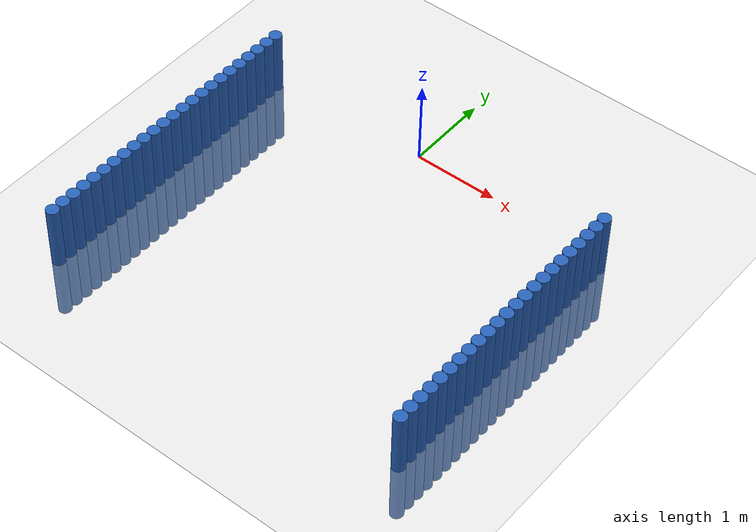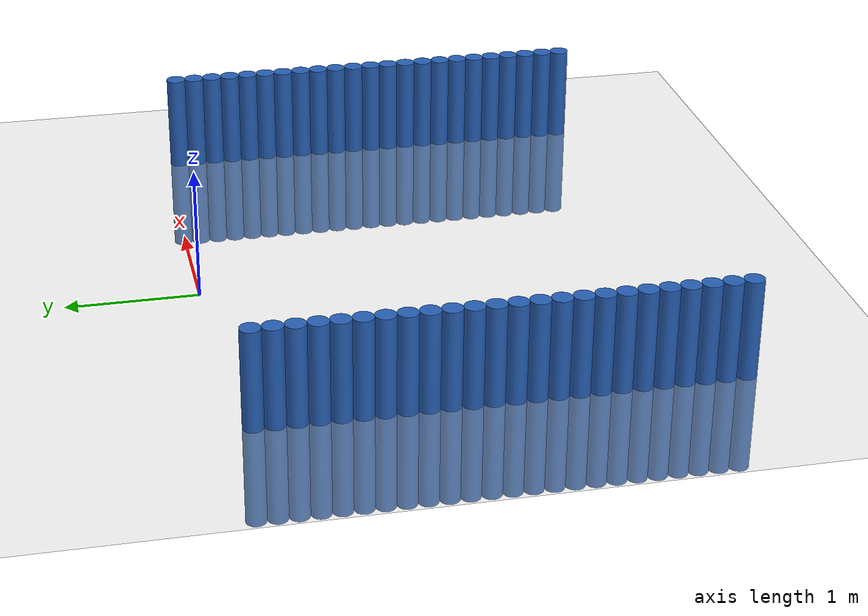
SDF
<sdf version="1.6">
 <world name="default">
  <model name="ground_plane">
   <static>1</static>
   <link name="link">
    <collision name="collision">
     <geometry><plane><normal>0 0 1</normal><size>100 100</size></plane></geometry>
     <surface><friction><ode><mu>100</mu><mu2>50</mu2></ode></friction></surface>
    </collision>
    <visual name="visual">
     <cast_shadows>0</cast_shadows>
     <geometry><plane><normal>0 0 1</normal><size>100 100</size></plane></geometry>
     <material>
      <script><uri>file://media/materials/scripts/gazebo.material</uri><name>Gazebo/Grey</name></script>
     </material>
    </visual>
   </link>
  </model>
  <model name="unit_cylinder_47">
   <static>1</static>
   <pose>-1.925000 -3.575000 0.000000 0.000000 0.000000 0.000000</pose>
   <link name="link">
    <inertial>
     <mass>1</mass>
     <inertia><ixx>0.145833</ixx><ixy>0</ixy><ixz>0</ixz><iyy>0.145833</iyy><iyz>0</iyz><izz>0.125</izz></inertia>
    </inertial>
    <collision name="collision">
     <geometry><cylinder><radius>0.075000</radius><length>1.5</length></cylinder></geometry>
    </collision>
    <visual name="visual">
     <geometry><cylinder><radius>0.075000</radius><length>1.5</length></cylinder></geometry>
     <material>
      <ambient>0.152000 0.379000 0.720000 1</ambient>
      <diffuse>0.152000 0.379000 0.720000 1</diffuse>
     </material>
     <material>
      <script><name>Gazebo/Grey</name><uri>file://media/materials/scripts/gazebo.material</uri></script>
     </material>
    </visual>
   </link>
  </model>
  <model name="unit_cylinder_48">
   <static>1</static>
   <pose>2.425000 -3.425000 0.000000 0.000000 0.000000 0.000000</pose>
   <link name="link">
    <inertial>
     <mass>1</mass>
     <inertia><ixx>0.145833</ixx><ixy>0</ixy><ixz>0</ixz><iyy>0.145833</iyy><iyz>0</iyz><izz>0.125</izz></inertia>
    </inertial>
    <collision name="collision">
     <geometry><cylinder><radius>0.075000</radius><length>1.5</length></cylinder></geometry>
    </collision>
    <visual name="visual">
     <geometry><cylinder><radius>0.075000</radius><length>1.5</length></cylinder></geometry>
     <material>
      <ambient>0.152000 0.379000 0.720000 1</ambient>
      <diffuse>0.152000 0.379000 0.720000 1</diffuse>
     </material>
     <material>
      <script><name>Gazebo/Grey</name><uri>file://media/materials/scripts/gazebo.material</uri></script>
     </material>
    </visual>
   </link>
  </model>
  <model name="unit_cylinder_49">
   <static>1</static>
   <pose>-1.925000 -3.425000 0.000000 0.000000 0.000000 0.000000</pose>
   <link name="link">
    <inertial>
     <mass>1</mass>
     <inertia><ixx>0.145833</ixx><ixy>0</ixy><ixz>0</ixz><iyy>0.145833</iyy><iyz>0</iyz><izz>0.125</izz></inertia>
    </inertial>
    <collision name="collision">
     <geometry><cylinder><radius>0.075000</radius><length>1.5</length></cylinder></geometry>
    </collision>
    <visual name="visual">
     <geometry><cylinder><radius>0.075000</radius><length>1.5</length></cylinder></geometry>
     <material>
      <ambient>0.152000 0.379000 0.720000 1</ambient>
      <diffuse>0.152000 0.379000 0.720000 1</diffuse>
     </material>
     <material>
      <script><name>Gazebo/Grey</name><uri>file://media/materials/scripts/gazebo.material</uri></script>
     </material>
    </visual>
   </link>
  </model>
  <model name="unit_cylinder_50">
   <static>1</static>
   <pose>2.425000 -3.275000 0.000000 0.000000 0.000000 0.000000</pose>
   <link name="link">
    <inertial>
     <mass>1</mass>
     <inertia><ixx>0.145833</ixx><ixy>0</ixy><ixz>0</ixz><iyy>0.145833</iyy><iyz>0</iyz><izz>0.125</izz></inertia>
    </inertial>
    <collision name="collision">
     <geometry><cylinder><radius>0.075000</radius><length>1.5</length></cylinder></geometry>
    </collision>
    <visual name="visual">
     <geometry><cylinder><radius>0.075000</radius><length>1.5</length></cylinder></geometry>
     <material>
      <ambient>0.152000 0.379000 0.720000 1</ambient>
      <diffuse>0.152000 0.379000 0.720000 1</diffuse>
     </material>
     <material>
      <script><name>Gazebo/Grey</name><uri>file://media/materials/scripts/gazebo.material</uri></script>
     </material>
    </visual>
   </link>
  </model>
  <model name="unit_cylinder_51">
   <static>1</static>
   <pose>-1.925000 -3.275000 0.000000 0.000000 0.000000 0.000000</pose>
   <link name="link">
    <inertial>
     <mass>1</mass>
     <inertia><ixx>0.145833</ixx><ixy>0</ixy><ixz>0</ixz><iyy>0.145833</iyy><iyz>0</iyz><izz>0.125</izz></inertia>
    </inertial>
    <collision name="collision">
     <geometry><cylinder><radius>0.075000</radius><length>1.5</length></cylinder></geometry>
    </collision>
    <visual name="visual">
     <geometry><cylinder><radius>0.075000</radius><length>1.5</length></cylinder></geometry>
     <material>
      <ambient>0.152000 0.379000 0.720000 1</ambient>
      <diffuse>0.152000 0.379000 0.720000 1</diffuse>
     </material>
     <material>
      <script><name>Gazebo/Grey</name><uri>file://media/materials/scripts/gazebo.material</uri></script>
     </material>
    </visual>
   </link>
  </model>
  <model name="unit_cylinder_52">
   <static>1</static>
   <pose>2.425000 -3.125000 0.000000 0.000000 0.000000 0.000000</pose>
   <link name="link">
    <inertial>
     <mass>1</mass>
     <inertia><ixx>0.145833</ixx><ixy>0</ixy><ixz>0</ixz><iyy>0.145833</iyy><iyz>0</iyz><izz>0.125</izz></inertia>
    </inertial>
    <collision name="collision">
     <geometry><cylinder><radius>0.075000</radius><length>1.5</length></cylinder></geometry>
    </collision>
    <visual name="visual">
     <geometry><cylinder><radius>0.075000</radius><length>1.5</length></cylinder></geometry>
     <material>
      <ambient>0.152000 0.379000 0.720000 1</ambient>
      <diffuse>0.152000 0.379000 0.720000 1</diffuse>
     </material>
     <material>
      <script><name>Gazebo/Grey</name><uri>file://media/materials/scripts/gazebo.material</uri></script>
     </material>
    </visual>
   </link>
  </model>
  <model name="unit_cylinder_53">
   <static>1</static>
   <pose>-1.925000 -3.125000 0.000000 0.000000 0.000000 0.000000</pose>
   <link name="link">
    <inertial>
     <mass>1</mass>
     <inertia><ixx>0.145833</ixx><ixy>0</ixy><ixz>0</ixz><iyy>0.145833</iyy><iyz>0</iyz><izz>0.125</izz></inertia>
    </inertial>
    <collision name="collision">
     <geometry><cylinder><radius>0.075000</radius><length>1.5</length></cylinder></geometry>
    </collision>
    <visual name="visual">
     <geometry><cylinder><radius>0.075000</radius><length>1.5</length></cylinder></geometry>
     <material>
      <ambient>0.152000 0.379000 0.720000 1</ambient>
      <diffuse>0.152000 0.379000 0.720000 1</diffuse>
     </material>
     <material>
      <script><name>Gazebo/Grey</name><uri>file://media/materials/scripts/gazebo.material</uri></script>
     </material>
    </visual>
   </link>
  </model>
  <model name="unit_cylinder_54">
   <static>1</static>
   <pose>2.425000 -2.975000 0.000000 0.000000 0.000000 0.000000</pose>
   <link name="link">
    <inertial>
     <mass>1</mass>
     <inertia><ixx>0.145833</ixx><ixy>0</ixy><ixz>0</ixz><iyy>0.145833</iyy><iyz>0</iyz><izz>0.125</izz></inertia>
    </inertial>
    <collision name="collision">
     <geometry><cylinder><radius>0.075000</radius><length>1.5</length></cylinder></geometry>
    </collision>
    <visual name="visual">
     <geometry><cylinder><radius>0.075000</radius><length>1.5</length></cylinder></geometry>
     <material>
      <ambient>0.152000 0.379000 0.720000 1</ambient>
      <diffuse>0.152000 0.379000 0.720000 1</diffuse>
     </material>
     <material>
      <script><name>Gazebo/Grey</name><uri>file://media/materials/scripts/gazebo.material</uri></script>
     </material>
    </visual>
   </link>
  </model>
  <model name="unit_cylinder_55">
   <static>1</static>
   <pose>-1.925000 -2.975000 0.000000 0.000000 0.000000 0.000000</pose>
   <link name="link">
    <inertial>
     <mass>1</mass>
     <inertia><ixx>0.145833</ixx><ixy>0</ixy><ixz>0</ixz><iyy>0.145833</iyy><iyz>0</iyz><izz>0.125</izz></inertia>
    </inertial>
    <collision name="collision">
     <geometry><cylinder><radius>0.075000</radius><length>1.5</length></cylinder></geometry>
    </collision>
    <visual name="visual">
     <geometry><cylinder><radius>0.075000</radius><length>1.5</length></cylinder></geometry>
     <material>
      <ambient>0.152000 0.379000 0.720000 1</ambient>
      <diffuse>0.152000 0.379000 0.720000 1</diffuse>
     </material>
     <material>
      <script><name>Gazebo/Grey</name><uri>file://media/materials/scripts/gazebo.material</uri></script>
     </material>
    </visual>
   </link>
  </model>
  <model name="unit_cylinder_56">
   <static>1</static>
   <pose>2.425000 -2.825000 0.000000 0.000000 0.000000 0.000000</pose>
   <link name="link">
    <inertial>
     <mass>1</mass>
     <inertia><ixx>0.145833</ixx><ixy>0</ixy><ixz>0</ixz><iyy>0.145833</iyy><iyz>0</iyz><izz>0.125</izz></inertia>
    </inertial>
    <collision name="collision">
     <geometry><cylinder><radius>0.075000</radius><length>1.5</length></cylinder></geometry>
    </collision>
    <visual name="visual">
     <geometry><cylinder><radius>0.075000</radius><length>1.5</length></cylinder></geometry>
     <material>
      <ambient>0.152000 0.379000 0.720000 1</ambient>
      <diffuse>0.152000 0.379000 0.720000 1</diffuse>
     </material>
     <material>
      <script><name>Gazebo/Grey</name><uri>file://media/materials/scripts/gazebo.material</uri></script>
     </material>
    </visual>
   </link>
  </model>
  <model name="unit_cylinder_57">
   <static>1</static>
   <pose>-1.925000 -2.825000 0.000000 0.000000 0.000000 0.000000</pose>
   <link name="link">
    <inertial>
     <mass>1</mass>
     <inertia><ixx>0.145833</ixx><ixy>0</ixy><ixz>0</ixz><iyy>0.145833</iyy><iyz>0</iyz><izz>0.125</izz></inertia>
    </inertial>
    <collision name="collision">
     <geometry><cylinder><radius>0.075000</radius><length>1.5</length></cylinder></geometry>
    </collision>
    <visual name="visual">
     <geometry><cylinder><radius>0.075000</radius><length>1.5</length></cylinder></geometry>
     <material>
      <ambient>0.152000 0.379000 0.720000 1</ambient>
      <diffuse>0.152000 0.379000 0.720000 1</diffuse>
     </material>
     <material>
      <script><name>Gazebo/Grey</name><uri>file://media/materials/scripts/gazebo.material</uri></script>
     </material>
    </visual>
   </link>
  </model>
  <model name="unit_cylinder_58">
   <static>1</static>
   <pose>2.425000 -2.675000 0.000000 0.000000 0.000000 0.000000</pose>
   <link name="link">
    <inertial>
     <mass>1</mass>
     <inertia><ixx>0.145833</ixx><ixy>0</ixy><ixz>0</ixz><iyy>0.145833</iyy><iyz>0</iyz><izz>0.125</izz></inertia>
    </inertial>
    <collision name="collision">
     <geometry><cylinder><radius>0.075000</radius><length>1.5</length></cylinder></geometry>
    </collision>
    <visual name="visual">
     <geometry><cylinder><radius>0.075000</radius><length>1.5</length></cylinder></geometry>
     <material>
      <ambient>0.152000 0.379000 0.720000 1</ambient>
      <diffuse>0.152000 0.379000 0.720000 1</diffuse>
     </material>
     <material>
      <script><name>Gazebo/Grey</name><uri>file://media/materials/scripts/gazebo.material</uri></script>
     </material>
    </visual>
   </link>
  </model>
  <model name="unit_cylinder_59">
   <static>1</static>
   <pose>-1.925000 -2.675000 0.000000 0.000000 0.000000 0.000000</pose>
   <link name="link">
    <inertial>
     <mass>1</mass>
     <inertia><ixx>0.145833</ixx><ixy>0</ixy><ixz>0</ixz><iyy>0.145833</iyy><iyz>0</iyz><izz>0.125</izz></inertia>
    </inertial>
    <collision name="collision">
     <geometry><cylinder><radius>0.075000</radius><length>1.5</length></cylinder></geometry>
    </collision>
    <visual name="visual">
     <geometry><cylinder><radius>0.075000</radius><length>1.5</length></cylinder></geometry>
     <material>
      <ambient>0.152000 0.379000 0.720000 1</ambient>
      <diffuse>0.152000 0.379000 0.720000 1</diffuse>
     </material>
     <material>
      <script><name>Gazebo/Grey</name><uri>file://media/materials/scripts/gazebo.material</uri></script>
     </material>
    </visual>
   </link>
  </model>
  <model name="unit_cylinder_60">
   <static>1</static>
   <pose>2.425000 -2.525000 0.000000 0.000000 0.000000 0.000000</pose>
   <link name="link">
    <inertial>
     <mass>1</mass>
     <inertia><ixx>0.145833</ixx><ixy>0</ixy><ixz>0</ixz><iyy>0.145833</iyy><iyz>0</iyz><izz>0.125</izz></inertia>
    </inertial>
    <collision name="collision">
     <geometry><cylinder><radius>0.075000</radius><length>1.5</length></cylinder></geometry>
    </collision>
    <visual name="visual">
     <geometry><cylinder><radius>0.075000</radius><length>1.5</length></cylinder></geometry>
     <material>
      <ambient>0.152000 0.379000 0.720000 1</ambient>
      <diffuse>0.152000 0.379000 0.720000 1</diffuse>
     </material>
     <material>
      <script><name>Gazebo/Grey</name><uri>file://media/materials/scripts/gazebo.material</uri></script>
     </material>
    </visual>
   </link>
  </model>
  <model name="unit_cylinder_61">
   <static>1</static>
   <pose>-1.925000 -2.525000 0.000000 0.000000 0.000000 0.000000</pose>
   <link name="link">
    <inertial>
     <mass>1</mass>
     <inertia><ixx>0.145833</ixx><ixy>0</ixy><ixz>0</ixz><iyy>0.145833</iyy><iyz>0</iyz><izz>0.125</izz></inertia>
    </inertial>
    <collision name="collision">
     <geometry><cylinder><radius>0.075000</radius><length>1.5</length></cylinder></geometry>
    </collision>
    <visual name="visual">
     <geometry><cylinder><radius>0.075000</radius><length>1.5</length></cylinder></geometry>
     <material>
      <ambient>0.152000 0.379000 0.720000 1</ambient>
      <diffuse>0.152000 0.379000 0.720000 1</diffuse>
     </material>
     <material>
      <script><name>Gazebo/Grey</name><uri>file://media/materials/scripts/gazebo.material</uri></script>
     </material>
    </visual>
   </link>
  </model>
  <model name="unit_cylinder_62">
   <static>1</static>
   <pose>2.425000 -2.375000 0.000000 0.000000 0.000000 0.000000</pose>
   <link name="link">
    <inertial>
     <mass>1</mass>
     <inertia><ixx>0.145833</ixx><ixy>0</ixy><ixz>0</ixz><iyy>0.145833</iyy><iyz>0</iyz><izz>0.125</izz></inertia>
    </inertial>
    <collision name="collision">
     <geometry><cylinder><radius>0.075000</radius><length>1.5</length></cylinder></geometry>
    </collision>
    <visual name="visual">
     <geometry><cylinder><radius>0.075000</radius><length>1.5</length></cylinder></geometry>
     <material>
      <ambient>0.152000 0.379000 0.720000 1</ambient>
      <diffuse>0.152000 0.379000 0.720000 1</diffuse>
     </material>
     <material>
      <script><name>Gazebo/Grey</name><uri>file://media/materials/scripts/gazebo.material</uri></script>
     </material>
    </visual>
   </link>
  </model>
  <model name="unit_cylinder_63">
   <static>1</static>
   <pose>-1.925000 -2.375000 0.000000 0.000000 0.000000 0.000000</pose>
   <link name="link">
    <inertial>
     <mass>1</mass>
     <inertia><ixx>0.145833</ixx><ixy>0</ixy><ixz>0</ixz><iyy>0.145833</iyy><iyz>0</iyz><izz>0.125</izz></inertia>
    </inertial>
    <collision name="collision">
     <geometry><cylinder><radius>0.075000</radius><length>1.5</length></cylinder></geometry>
    </collision>
    <visual name="visual">
     <geometry><cylinder><radius>0.075000</radius><length>1.5</length></cylinder></geometry>
     <material>
      <ambient>0.152000 0.379000 0.720000 1</ambient>
      <diffuse>0.152000 0.379000 0.720000 1</diffuse>
     </material>
     <material>
      <script><name>Gazebo/Grey</name><uri>file://media/materials/scripts/gazebo.material</uri></script>
     </material>
    </visual>
   </link>
  </model>
  <model name="unit_cylinder_64">
   <static>1</static>
   <pose>2.425000 -2.225000 0.000000 0.000000 0.000000 0.000000</pose>
   <link name="link">
    <inertial>
     <mass>1</mass>
     <inertia><ixx>0.145833</ixx><ixy>0</ixy><ixz>0</ixz><iyy>0.145833</iyy><iyz>0</iyz><izz>0.125</izz></inertia>
    </inertial>
    <collision name="collision">
     <geometry><cylinder><radius>0.075000</radius><length>1.5</length></cylinder></geometry>
    </collision>
    <visual name="visual">
     <geometry><cylinder><radius>0.075000</radius><length>1.5</length></cylinder></geometry>
     <material>
      <ambient>0.152000 0.379000 0.720000 1</ambient>
      <diffuse>0.152000 0.379000 0.720000 1</diffuse>
     </material>
     <material>
      <script><name>Gazebo/Grey</name><uri>file://media/materials/scripts/gazebo.material</uri></script>
     </material>
    </visual>
   </link>
  </model>
  <model name="unit_cylinder_65">
   <static>1</static>
   <pose>-1.925000 -2.225000 0.000000 0.000000 0.000000 0.000000</pose>
   <link name="link">
    <inertial>
     <mass>1</mass>
     <inertia><ixx>0.145833</ixx><ixy>0</ixy><ixz>0</ixz><iyy>0.145833</iyy><iyz>0</iyz><izz>0.125</izz></inertia>
    </inertial>
    <collision name="collision">
     <geometry><cylinder><radius>0.075000</radius><length>1.5</length></cylinder></geometry>
    </collision>
    <visual name="visual">
     <geometry><cylinder><radius>0.075000</radius><length>1.5</length></cylinder></geometry>
     <material>
      <ambient>0.152000 0.379000 0.720000 1</ambient>
      <diffuse>0.152000 0.379000 0.720000 1</diffuse>
     </material>
     <material>
      <script><name>Gazebo/Grey</name><uri>file://media/materials/scripts/gazebo.material</uri></script>
     </material>
    </visual>
   </link>
  </model>
  <model name="unit_cylinder_66">
   <static>1</static>
   <pose>2.425000 -2.075000 0.000000 0.000000 0.000000 0.000000</pose>
   <link name="link">
    <inertial>
     <mass>1</mass>
     <inertia><ixx>0.145833</ixx><ixy>0</ixy><ixz>0</ixz><iyy>0.145833</iyy><iyz>0</iyz><izz>0.125</izz></inertia>
    </inertial>
    <collision name="collision">
     <geometry><cylinder><radius>0.075000</radius><length>1.5</length></cylinder></geometry>
    </collision>
    <visual name="visual">
     <geometry><cylinder><radius>0.075000</radius><length>1.5</length></cylinder></geometry>
     <material>
      <ambient>0.152000 0.379000 0.720000 1</ambient>
      <diffuse>0.152000 0.379000 0.720000 1</diffuse>
     </material>
     <material>
      <script><name>Gazebo/Grey</name><uri>file://media/materials/scripts/gazebo.material</uri></script>
     </material>
    </visual>
   </link>
  </model>
  <model name="unit_cylinder_67">
   <static>1</static>
   <pose>-1.925000 -2.075000 0.000000 0.000000 0.000000 0.000000</pose>
   <link name="link">
    <inertial>
     <mass>1</mass>
     <inertia><ixx>0.145833</ixx><ixy>0</ixy><ixz>0</ixz><iyy>0.145833</iyy><iyz>0</iyz><izz>0.125</izz></inertia>
    </inertial>
    <collision name="collision">
     <geometry><cylinder><radius>0.075000</radius><length>1.5</length></cylinder></geometry>
    </collision>
    <visual name="visual">
     <geometry><cylinder><radius>0.075000</radius><length>1.5</length></cylinder></geometry>
     <material>
      <ambient>0.152000 0.379000 0.720000 1</ambient>
      <diffuse>0.152000 0.379000 0.720000 1</diffuse>
     </material>
     <material>
      <script><name>Gazebo/Grey</name><uri>file://media/materials/scripts/gazebo.material</uri></script>
     </material>
    </visual>
   </link>
  </model>
  <model name="unit_cylinder_68">
   <static>1</static>
   <pose>2.425000 -1.925000 0.000000 0.000000 0.000000 0.000000</pose>
   <link name="link">
    <inertial>
     <mass>1</mass>
     <inertia><ixx>0.145833</ixx><ixy>0</ixy><ixz>0</ixz><iyy>0.145833</iyy><iyz>0</iyz><izz>0.125</izz></inertia>
    </inertial>
    <collision name="collision">
     <geometry><cylinder><radius>0.075000</radius><length>1.5</length></cylinder></geometry>
    </collision>
    <visual name="visual">
     <geometry><cylinder><radius>0.075000</radius><length>1.5</length></cylinder></geometry>
     <material>
      <ambient>0.152000 0.379000 0.720000 1</ambient>
      <diffuse>0.152000 0.379000 0.720000 1</diffuse>
     </material>
     <material>
      <script><name>Gazebo/Grey</name><uri>file://media/materials/scripts/gazebo.material</uri></script>
     </material>
    </visual>
   </link>
  </model>
  <model name="unit_cylinder_69">
   <static>1</static>
   <pose>-1.925000 -1.925000 0.000000 0.000000 0.000000 0.000000</pose>
   <link name="link">
    <inertial>
     <mass>1</mass>
     <inertia><ixx>0.145833</ixx><ixy>0</ixy><ixz>0</ixz><iyy>0.145833</iyy><iyz>0</iyz><izz>0.125</izz></inertia>
    </inertial>
    <collision name="collision">
     <geometry><cylinder><radius>0.075000</radius><length>1.5</length></cylinder></geometry>
    </collision>
    <visual name="visual">
     <geometry><cylinder><radius>0.075000</radius><length>1.5</length></cylinder></geometry>
     <material>
      <ambient>0.152000 0.379000 0.720000 1</ambient>
      <diffuse>0.152000 0.379000 0.720000 1</diffuse>
     </material>
     <material>
      <script><name>Gazebo/Grey</name><uri>file://media/materials/scripts/gazebo.material</uri></script>
     </material>
    </visual>
   </link>
  </model>
  <model name="unit_cylinder_70">
   <static>1</static>
   <pose>2.425000 -1.775000 0.000000 0.000000 0.000000 0.000000</pose>
   <link name="link">
    <inertial>
     <mass>1</mass>
     <inertia><ixx>0.145833</ixx><ixy>0</ixy><ixz>0</ixz><iyy>0.145833</iyy><iyz>0</iyz><izz>0.125</izz></inertia>
    </inertial>
    <collision name="collision">
     <geometry><cylinder><radius>0.075000</radius><length>1.5</length></cylinder></geometry>
    </collision>
    <visual name="visual">
     <geometry><cylinder><radius>0.075000</radius><length>1.5</length></cylinder></geometry>
     <material>
      <ambient>0.152000 0.379000 0.720000 1</ambient>
      <diffuse>0.152000 0.379000 0.720000 1</diffuse>
     </material>
     <material>
      <script><name>Gazebo/Grey</name><uri>file://media/materials/scripts/gazebo.material</uri></script>
     </material>
    </visual>
   </link>
  </model>
  <model name="unit_cylinder_71">
   <static>1</static>
   <pose>-1.925000 -1.775000 0.000000 0.000000 0.000000 0.000000</pose>
   <link name="link">
    <inertial>
     <mass>1</mass>
     <inertia><ixx>0.145833</ixx><ixy>0</ixy><ixz>0</ixz><iyy>0.145833</iyy><iyz>0</iyz><izz>0.125</izz></inertia>
    </inertial>
    <collision name="collision">
     <geometry><cylinder><radius>0.075000</radius><length>1.5</length></cylinder></geometry>
    </collision>
    <visual name="visual">
     <geometry><cylinder><radius>0.075000</radius><length>1.5</length></cylinder></geometry>
     <material>
      <ambient>0.152000 0.379000 0.720000 1</ambient>
      <diffuse>0.152000 0.379000 0.720000 1</diffuse>
     </material>
     <material>
      <script><name>Gazebo/Grey</name><uri>file://media/materials/scripts/gazebo.material</uri></script>
     </material>
    </visual>
   </link>
  </model>
  <model name="unit_cylinder_72">
   <static>1</static>
   <pose>2.425000 -1.625000 0.000000 0.000000 0.000000 0.000000</pose>
   <link name="link">
    <inertial>
     <mass>1</mass>
     <inertia><ixx>0.145833</ixx><ixy>0</ixy><ixz>0</ixz><iyy>0.145833</iyy><iyz>0</iyz><izz>0.125</izz></inertia>
    </inertial>
    <collision name="collision">
     <geometry><cylinder><radius>0.075000</radius><length>1.5</length></cylinder></geometry>
    </collision>
    <visual name="visual">
     <geometry><cylinder><radius>0.075000</radius><length>1.5</length></cylinder></geometry>
     <material>
      <ambient>0.152000 0.379000 0.720000 1</ambient>
      <diffuse>0.152000 0.379000 0.720000 1</diffuse>
     </material>
     <material>
      <script><name>Gazebo/Grey</name><uri>file://media/materials/scripts/gazebo.material</uri></script>
     </material>
    </visual>
   </link>
  </model>
  <model name="unit_cylinder_73">
   <static>1</static>
   <pose>-1.925000 -1.625000 0.000000 0.000000 0.000000 0.000000</pose>
   <link name="link">
    <inertial>
     <mass>1</mass>
     <inertia><ixx>0.145833</ixx><ixy>0</ixy><ixz>0</ixz><iyy>0.145833</iyy><iyz>0</iyz><izz>0.125</izz></inertia>
    </inertial>
    <collision name="collision">
     <geometry><cylinder><radius>0.075000</radius><length>1.5</length></cylinder></geometry>
    </collision>
    <visual name="visual">
     <geometry><cylinder><radius>0.075000</radius><length>1.5</length></cylinder></geometry>
     <material>
      <ambient>0.152000 0.379000 0.720000 1</ambient>
      <diffuse>0.152000 0.379000 0.720000 1</diffuse>
     </material>
     <material>
      <script><name>Gazebo/Grey</name><uri>file://media/materials/scripts/gazebo.material</uri></script>
     </material>
    </visual>
   </link>
  </model>
  <model name="unit_cylinder_74">
   <static>1</static>
   <pose>2.425000 -1.475000 0.000000 0.000000 0.000000 0.000000</pose>
   <link name="link">
    <inertial>
     <mass>1</mass>
     <inertia><ixx>0.145833</ixx><ixy>0</ixy><ixz>0</ixz><iyy>0.145833</iyy><iyz>0</iyz><izz>0.125</izz></inertia>
    </inertial>
    <collision name="collision">
     <geometry><cylinder><radius>0.075000</radius><length>1.5</length></cylinder></geometry>
    </collision>
    <visual name="visual">
     <geometry><cylinder><radius>0.075000</radius><length>1.5</length></cylinder></geometry>
     <material>
      <ambient>0.152000 0.379000 0.720000 1</ambient>
      <diffuse>0.152000 0.379000 0.720000 1</diffuse>
     </material>
     <material>
      <script><name>Gazebo/Grey</name><uri>file://media/materials/scripts/gazebo.material</uri></script>
     </material>
    </visual>
   </link>
  </model>
  <model name="unit_cylinder_75">
   <static>1</static>
   <pose>-1.925000 -1.475000 0.000000 0.000000 0.000000 0.000000</pose>
   <link name="link">
    <inertial>
     <mass>1</mass>
     <inertia><ixx>0.145833</ixx><ixy>0</ixy><ixz>0</ixz><iyy>0.145833</iyy><iyz>0</iyz><izz>0.125</izz></inertia>
    </inertial>
    <collision name="collision">
     <geometry><cylinder><radius>0.075000</radius><length>1.5</length></cylinder></geometry>
    </collision>
    <visual name="visual">
     <geometry><cylinder><radius>0.075000</radius><length>1.5</length></cylinder></geometry>
     <material>
      <ambient>0.152000 0.379000 0.720000 1</ambient>
      <diffuse>0.152000 0.379000 0.720000 1</diffuse>
     </material>
     <material>
      <script><name>Gazebo/Grey</name><uri>file://media/materials/scripts/gazebo.material</uri></script>
     </material>
    </visual>
   </link>
  </model>
  <model name="unit_cylinder_76">
   <static>1</static>
   <pose>2.425000 -1.325000 0.000000 0.000000 0.000000 0.000000</pose>
   <link name="link">
    <inertial>
     <mass>1</mass>
     <inertia><ixx>0.145833</ixx><ixy>0</ixy><ixz>0</ixz><iyy>0.145833</iyy><iyz>0</iyz><izz>0.125</izz></inertia>
    </inertial>
    <collision name="collision">
     <geometry><cylinder><radius>0.075000</radius><length>1.5</length></cylinder></geometry>
    </collision>
    <visual name="visual">
     <geometry><cylinder><radius>0.075000</radius><length>1.5</length></cylinder></geometry>
     <material>
      <ambient>0.152000 0.379000 0.720000 1</ambient>
      <diffuse>0.152000 0.379000 0.720000 1</diffuse>
     </material>
     <material>
      <script><name>Gazebo/Grey</name><uri>file://media/materials/scripts/gazebo.material</uri></script>
     </material>
    </visual>
   </link>
  </model>
  <model name="unit_cylinder_77">
   <static>1</static>
   <pose>-1.925000 -1.325000 0.000000 0.000000 0.000000 0.000000</pose>
   <link name="link">
    <inertial>
     <mass>1</mass>
     <inertia><ixx>0.145833</ixx><ixy>0</ixy><ixz>0</ixz><iyy>0.145833</iyy><iyz>0</iyz><izz>0.125</izz></inertia>
    </inertial>
    <collision name="collision">
     <geometry><cylinder><radius>0.075000</radius><length>1.5</length></cylinder></geometry>
    </collision>
    <visual name="visual">
     <geometry><cylinder><radius>0.075000</radius><length>1.5</length></cylinder></geometry>
     <material>
      <ambient>0.152000 0.379000 0.720000 1</ambient>
      <diffuse>0.152000 0.379000 0.720000 1</diffuse>
     </material>
     <material>
      <script><name>Gazebo/Grey</name><uri>file://media/materials/scripts/gazebo.material</uri></script>
     </material>
    </visual>
   </link>
  </model>
  <model name="unit_cylinder_78">
   <static>1</static>
   <pose>2.425000 -1.175000 0.000000 0.000000 0.000000 0.000000</pose>
   <link name="link">
    <inertial>
     <mass>1</mass>
     <inertia><ixx>0.145833</ixx><ixy>0</ixy><ixz>0</ixz><iyy>0.145833</iyy><iyz>0</iyz><izz>0.125</izz></inertia>
    </inertial>
    <collision name="collision">
     <geometry><cylinder><radius>0.075000</radius><length>1.5</length></cylinder></geometry>
    </collision>
    <visual name="visual">
     <geometry><cylinder><radius>0.075000</radius><length>1.5</length></cylinder></geometry>
     <material>
      <ambient>0.152000 0.379000 0.720000 1</ambient>
      <diffuse>0.152000 0.379000 0.720000 1</diffuse>
     </material>
     <material>
      <script><name>Gazebo/Grey</name><uri>file://media/materials/scripts/gazebo.material</uri></script>
     </material>
    </visual>
   </link>
  </model>
  <model name="unit_cylinder_79">
   <static>1</static>
   <pose>-1.925000 -1.175000 0.000000 0.000000 0.000000 0.000000</pose>
   <link name="link">
    <inertial>
     <mass>1</mass>
     <inertia><ixx>0.145833</ixx><ixy>0</ixy><ixz>0</ixz><iyy>0.145833</iyy><iyz>0</iyz><izz>0.125</izz></inertia>
    </inertial>
    <collision name="collision">
     <geometry><cylinder><radius>0.075000</radius><length>1.5</length></cylinder></geometry>
    </collision>
    <visual name="visual">
     <geometry><cylinder><radius>0.075000</radius><length>1.5</length></cylinder></geometry>
     <material>
      <ambient>0.152000 0.379000 0.720000 1</ambient>
      <diffuse>0.152000 0.379000 0.720000 1</diffuse>
     </material>
     <material>
      <script><name>Gazebo/Grey</name><uri>file://media/materials/scripts/gazebo.material</uri></script>
     </material>
    </visual>
   </link>
  </model>
  <model name="unit_cylinder_80">
   <static>1</static>
   <pose>2.425000 -1.025000 0.000000 0.000000 0.000000 0.000000</pose>
   <link name="link">
    <inertial>
     <mass>1</mass>
     <inertia><ixx>0.145833</ixx><ixy>0</ixy><ixz>0</ixz><iyy>0.145833</iyy><iyz>0</iyz><izz>0.125</izz></inertia>
    </inertial>
    <collision name="collision">
     <geometry><cylinder><radius>0.075000</radius><length>1.5</length></cylinder></geometry>
    </collision>
    <visual name="visual">
     <geometry><cylinder><radius>0.075000</radius><length>1.5</length></cylinder></geometry>
     <material>
      <ambient>0.152000 0.379000 0.720000 1</ambient>
      <diffuse>0.152000 0.379000 0.720000 1</diffuse>
     </material>
     <material>
      <script><name>Gazebo/Grey</name><uri>file://media/materials/scripts/gazebo.material</uri></script>
     </material>
    </visual>
   </link>
  </model>
  <model name="unit_cylinder_81">
   <static>1</static>
   <pose>-1.925000 -1.025000 0.000000 0.000000 0.000000 0.000000</pose>
   <link name="link">
    <inertial>
     <mass>1</mass>
     <inertia><ixx>0.145833</ixx><ixy>0</ixy><ixz>0</ixz><iyy>0.145833</iyy><iyz>0</iyz><izz>0.125</izz></inertia>
    </inertial>
    <collision name="collision">
     <geometry><cylinder><radius>0.075000</radius><length>1.5</length></cylinder></geometry>
    </collision>
    <visual name="visual">
     <geometry><cylinder><radius>0.075000</radius><length>1.5</length></cylinder></geometry>
     <material>
      <ambient>0.152000 0.379000 0.720000 1</ambient>
      <diffuse>0.152000 0.379000 0.720000 1</diffuse>
     </material>
     <material>
      <script><name>Gazebo/Grey</name><uri>file://media/materials/scripts/gazebo.material</uri></script>
     </material>
    </visual>
   </link>
  </model>
  <model name="unit_cylinder_82">
   <static>1</static>
   <pose>2.425000 -0.875000 0.000000 0.000000 0.000000 0.000000</pose>
   <link name="link">
    <inertial>
     <mass>1</mass>
     <inertia><ixx>0.145833</ixx><ixy>0</ixy><ixz>0</ixz><iyy>0.145833</iyy><iyz>0</iyz><izz>0.125</izz></inertia>
    </inertial>
    <collision name="collision">
     <geometry><cylinder><radius>0.075000</radius><length>1.5</length></cylinder></geometry>
    </collision>
    <visual name="visual">
     <geometry><cylinder><radius>0.075000</radius><length>1.5</length></cylinder></geometry>
     <material>
      <ambient>0.152000 0.379000 0.720000 1</ambient>
      <diffuse>0.152000 0.379000 0.720000 1</diffuse>
     </material>
     <material>
      <script><name>Gazebo/Grey</name><uri>file://media/materials/scripts/gazebo.material</uri></script>
     </material>
    </visual>
   </link>
  </model>
  <model name="unit_cylinder_83">
   <static>1</static>
   <pose>-1.925000 -0.875000 0.000000 0.000000 0.000000 0.000000</pose>
   <link name="link">
    <inertial>
     <mass>1</mass>
     <inertia><ixx>0.145833</ixx><ixy>0</ixy><ixz>0</ixz><iyy>0.145833</iyy><iyz>0</iyz><izz>0.125</izz></inertia>
    </inertial>
    <collision name="collision">
     <geometry><cylinder><radius>0.075000</radius><length>1.5</length></cylinder></geometry>
    </collision>
    <visual name="visual">
     <geometry><cylinder><radius>0.075000</radius><length>1.5</length></cylinder></geometry>
     <material>
      <ambient>0.152000 0.379000 0.720000 1</ambient>
      <diffuse>0.152000 0.379000 0.720000 1</diffuse>
     </material>
     <material>
      <script><name>Gazebo/Grey</name><uri>file://media/materials/scripts/gazebo.material</uri></script>
     </material>
    </visual>
   </link>
  </model>
  <model name="unit_cylinder_84">
   <static>1</static>
   <pose>2.425000 -0.725000 0.000000 0.000000 0.000000 0.000000</pose>
   <link name="link">
    <inertial>
     <mass>1</mass>
     <inertia><ixx>0.145833</ixx><ixy>0</ixy><ixz>0</ixz><iyy>0.145833</iyy><iyz>0</iyz><izz>0.125</izz></inertia>
    </inertial>
    <collision name="collision">
     <geometry><cylinder><radius>0.075000</radius><length>1.5</length></cylinder></geometry>
    </collision>
    <visual name="visual">
     <geometry><cylinder><radius>0.075000</radius><length>1.5</length></cylinder></geometry>
     <material>
      <ambient>0.152000 0.379000 0.720000 1</ambient>
      <diffuse>0.152000 0.379000 0.720000 1</diffuse>
     </material>
     <material>
      <script><name>Gazebo/Grey</name><uri>file://media/materials/scripts/gazebo.material</uri></script>
     </material>
    </visual>
   </link>
  </model>
  <model name="unit_cylinder_85">
   <static>1</static>
   <pose>-1.925000 -0.725000 0.000000 0.000000 0.000000 0.000000</pose>
   <link name="link">
    <inertial>
     <mass>1</mass>
     <inertia><ixx>0.145833</ixx><ixy>0</ixy><ixz>0</ixz><iyy>0.145833</iyy><iyz>0</iyz><izz>0.125</izz></inertia>
    </inertial>
    <collision name="collision">
     <geometry><cylinder><radius>0.075000</radius><length>1.5</length></cylinder></geometry>
    </collision>
    <visual name="visual">
     <geometry><cylinder><radius>0.075000</radius><length>1.5</length></cylinder></geometry>
     <material>
      <ambient>0.152000 0.379000 0.720000 1</ambient>
      <diffuse>0.152000 0.379000 0.720000 1</diffuse>
     </material>
     <material>
      <script><name>Gazebo/Grey</name><uri>file://media/materials/scripts/gazebo.material</uri></script>
     </material>
    </visual>
   </link>
  </model>
  <model name="unit_cylinder_86">
   <static>1</static>
   <pose>2.425000 -0.575000 0.000000 0.000000 0.000000 0.000000</pose>
   <link name="link">
    <inertial>
     <mass>1</mass>
     <inertia><ixx>0.145833</ixx><ixy>0</ixy><ixz>0</ixz><iyy>0.145833</iyy><iyz>0</iyz><izz>0.125</izz></inertia>
    </inertial>
    <collision name="collision">
     <geometry><cylinder><radius>0.075000</radius><length>1.5</length></cylinder></geometry>
    </collision>
    <visual name="visual">
     <geometry><cylinder><radius>0.075000</radius><length>1.5</length></cylinder></geometry>
     <material>
      <ambient>0.152000 0.379000 0.720000 1</ambient>
      <diffuse>0.152000 0.379000 0.720000 1</diffuse>
     </material>
     <material>
      <script><name>Gazebo/Grey</name><uri>file://media/materials/scripts/gazebo.material</uri></script>
     </material>
    </visual>
   </link>
  </model>
  <model name="unit_cylinder_87">
   <static>1</static>
   <pose>-1.925000 -0.575000 0.000000 0.000000 0.000000 0.000000</pose>
   <link name="link">
    <inertial>
     <mass>1</mass>
     <inertia><ixx>0.145833</ixx><ixy>0</ixy><ixz>0</ixz><iyy>0.145833</iyy><iyz>0</iyz><izz>0.125</izz></inertia>
    </inertial>
    <collision name="collision">
     <geometry><cylinder><radius>0.075000</radius><length>1.5</length></cylinder></geometry>
    </collision>
    <visual name="visual">
     <geometry><cylinder><radius>0.075000</radius><length>1.5</length></cylinder></geometry>
     <material>
      <ambient>0.152000 0.379000 0.720000 1</ambient>
      <diffuse>0.152000 0.379000 0.720000 1</diffuse>
     </material>
     <material>
      <script><name>Gazebo/Grey</name><uri>file://media/materials/scripts/gazebo.material</uri></script>
     </material>
    </visual>
   </link>
  </model>
  <model name="unit_cylinder_88">
   <static>1</static>
   <pose>2.425000 -0.425000 0.000000 0.000000 0.000000 0.000000</pose>
   <link name="link">
    <inertial>
     <mass>1</mass>
     <inertia><ixx>0.145833</ixx><ixy>0</ixy><ixz>0</ixz><iyy>0.145833</iyy><iyz>0</iyz><izz>0.125</izz></inertia>
    </inertial>
    <collision name="collision">
     <geometry><cylinder><radius>0.075000</radius><length>1.5</length></cylinder></geometry>
    </collision>
    <visual name="visual">
     <geometry><cylinder><radius>0.075000</radius><length>1.5</length></cylinder></geometry>
     <material>
      <ambient>0.152000 0.379000 0.720000 1</ambient>
      <diffuse>0.152000 0.379000 0.720000 1</diffuse>
     </material>
     <material>
      <script><name>Gazebo/Grey</name><uri>file://media/materials/scripts/gazebo.material</uri></script>
     </material>
    </visual>
   </link>
  </model>
  <model name="unit_cylinder_89">
   <static>1</static>
   <pose>-1.925000 -0.425000 0.000000 0.000000 0.000000 0.000000</pose>
   <link name="link">
    <inertial>
     <mass>1</mass>
     <inertia><ixx>0.145833</ixx><ixy>0</ixy><ixz>0</ixz><iyy>0.145833</iyy><iyz>0</iyz><izz>0.125</izz></inertia>
    </inertial>
    <collision name="collision">
     <geometry><cylinder><radius>0.075000</radius><length>1.5</length></cylinder></geometry>
    </collision>
    <visual name="visual">
     <geometry><cylinder><radius>0.075000</radius><length>1.5</length></cylinder></geometry>
     <material>
      <ambient>0.152000 0.379000 0.720000 1</ambient>
      <diffuse>0.152000 0.379000 0.720000 1</diffuse>
     </material>
     <material>
      <script><name>Gazebo/Grey</name><uri>file://media/materials/scripts/gazebo.material</uri></script>
     </material>
    </visual>
   </link>
  </model>
  <model name="unit_cylinder_90">
   <static>1</static>
   <pose>2.425000 -0.275000 0.000000 0.000000 0.000000 0.000000</pose>
   <link name="link">
    <inertial>
     <mass>1</mass>
     <inertia><ixx>0.145833</ixx><ixy>0</ixy><ixz>0</ixz><iyy>0.145833</iyy><iyz>0</iyz><izz>0.125</izz></inertia>
    </inertial>
    <collision name="collision">
     <geometry><cylinder><radius>0.075000</radius><length>1.5</length></cylinder></geometry>
    </collision>
    <visual name="visual">
     <geometry><cylinder><radius>0.075000</radius><length>1.5</length></cylinder></geometry>
     <material>
      <ambient>0.152000 0.379000 0.720000 1</ambient>
      <diffuse>0.152000 0.379000 0.720000 1</diffuse>
     </material>
     <material>
      <script><name>Gazebo/Grey</name><uri>file://media/materials/scripts/gazebo.material</uri></script>
     </material>
    </visual>
   </link>
  </model>
  <model name="unit_cylinder_91">
   <static>1</static>
   <pose>-1.925000 -0.275000 0.000000 0.000000 0.000000 0.000000</pose>
   <link name="link">
    <inertial>
     <mass>1</mass>
     <inertia><ixx>0.145833</ixx><ixy>0</ixy><ixz>0</ixz><iyy>0.145833</iyy><iyz>0</iyz><izz>0.125</izz></inertia>
    </inertial>
    <collision name="collision">
     <geometry><cylinder><radius>0.075000</radius><length>1.5</length></cylinder></geometry>
    </collision>
    <visual name="visual">
     <geometry><cylinder><radius>0.075000</radius><length>1.5</length></cylinder></geometry>
     <material>
      <ambient>0.152000 0.379000 0.720000 1</ambient>
      <diffuse>0.152000 0.379000 0.720000 1</diffuse>
     </material>
     <material>
      <script><name>Gazebo/Grey</name><uri>file://media/materials/scripts/gazebo.material</uri></script>
     </material>
    </visual>
   </link>
  </model>
  <model name="unit_cylinder_92">
   <static>1</static>
   <pose>2.425000 -0.125000 0.000000 0.000000 0.000000 0.000000</pose>
   <link name="link">
    <inertial>
     <mass>1</mass>
     <inertia><ixx>0.145833</ixx><ixy>0</ixy><ixz>0</ixz><iyy>0.145833</iyy><iyz>0</iyz><izz>0.125</izz></inertia>
    </inertial>
    <collision name="collision">
     <geometry><cylinder><radius>0.075000</radius><length>1.5</length></cylinder></geometry>
    </collision>
    <visual name="visual">
     <geometry><cylinder><radius>0.075000</radius><length>1.5</length></cylinder></geometry>
     <material>
      <ambient>0.152000 0.379000 0.720000 1</ambient>
      <diffuse>0.152000 0.379000 0.720000 1</diffuse>
     </material>
     <material>
      <script><name>Gazebo/Grey</name><uri>file://media/materials/scripts/gazebo.material</uri></script>
     </material>
    </visual>
   </link>
  </model>
  <model name="unit_cylinder_93">
   <static>1</static>
   <pose>-1.925000 -0.125000 0.000000 0.000000 0.000000 0.000000</pose>
   <link name="link">
    <inertial>
     <mass>1</mass>
     <inertia><ixx>0.145833</ixx><ixy>0</ixy><ixz>0</ixz><iyy>0.145833</iyy><iyz>0</iyz><izz>0.125</izz></inertia>
    </inertial>
    <collision name="collision">
     <geometry><cylinder><radius>0.075000</radius><length>1.5</length></cylinder></geometry>
    </collision>
    <visual name="visual">
     <geometry><cylinder><radius>0.075000</radius><length>1.5</length></cylinder></geometry>
     <material>
      <ambient>0.152000 0.379000 0.720000 1</ambient>
      <diffuse>0.152000 0.379000 0.720000 1</diffuse>
     </material>
     <material>
      <script><name>Gazebo/Grey</name><uri>file://media/materials/scripts/gazebo.material</uri></script>
     </material>
    </visual>
   </link>
  </model>
 </world>
</sdf>
